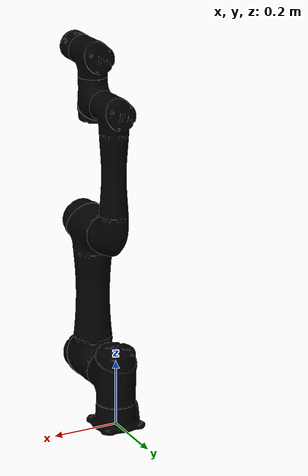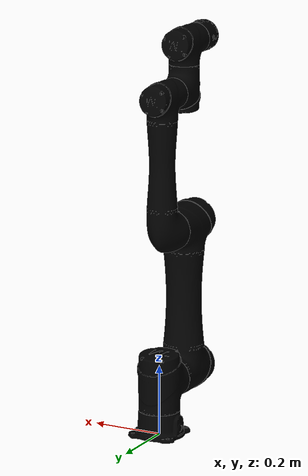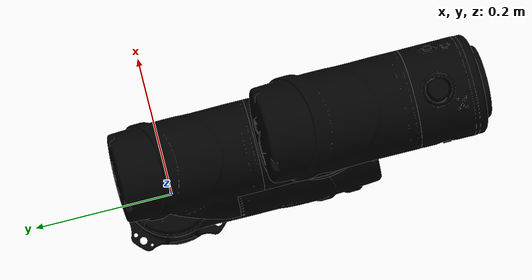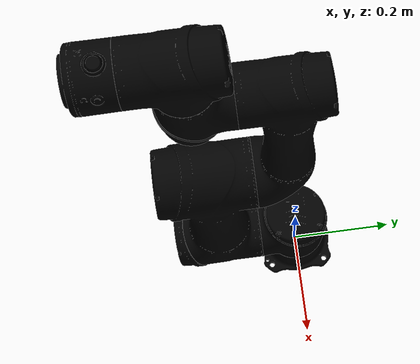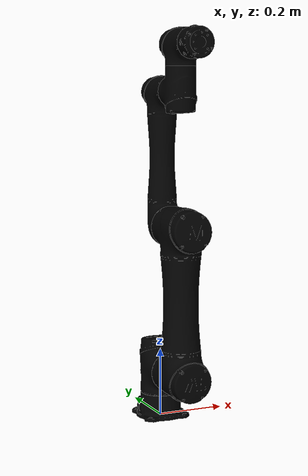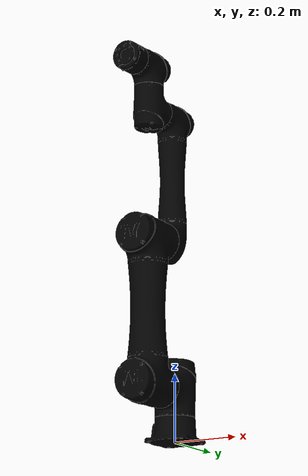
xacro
<?xml version="1.0"?>
<robot xmlns:xacro="http://www.ros.org/wiki/xacro" name="tm5sx">

  <xacro:arg name="ns" default="" />
  <xacro:arg name="prefix" default="" />
  <xacro:arg name="color" default="none" />
  <xacro:arg name="trans_hw_iface" default="hardware_interface/PositionJointInterface" />

  <xacro:include filename="$(find tm_gazebo)/xacro/tm.gazebo.xacro" />
  <xacro:include filename="$(find tm_description)/xacro/macro.transmission.xacro" />
  <xacro:include filename="$(find tm_description)/xacro/macro.materials.xacro" />

  <!-- tm5sx -->
  <!-- If the user want to use newly generated named robot description file as user_defined.urdf.xacro, -->
  <!-- you must modify 'macro.tm5sx-nominal.urdf.xacro' to 'user_defined.urdf.xacro'  -->
  <xacro:include filename="$(find tm_description)/xacro/macro.tm5sx-nominal.urdf.xacro" />

  <xacro:tmr_gazebo ns="$(arg ns)" prefix="$(arg prefix)" />
  <xacro:tmr_transmission prefix="$(arg prefix)" hw_iface="$(arg trans_hw_iface)" />
  <xacro:tmr_materials/>

  <!-- Arm -->
  <xacro:property name="color" value="$(arg color)"/>
  <xacro:if value="${color == 'none'}">
    <xacro:tm5sx ns="$(arg ns)" prefix="$(arg prefix)" />
  </xacro:if>

  <!-- Arm.color.stl -->
  <xacro:unless value="${color == 'none'}">
    <xacro:tm5sx ns="$(arg ns)" prefix="$(arg prefix)" color="${color}" format="obj" />
  </xacro:unless>

  <link name="world" />
  <joint name="world_joint" type="fixed">
    <parent link="world" />
    <child link="base" />
    <origin xyz="0 0 0" rpy="0 0 0" />
  </joint>

</robot>

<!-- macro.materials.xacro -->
<robot xmlns:xacro="http://www.ros.org/wiki/xacro">
    <xacro:macro name="tmr_materials">
        <material name="none">
            <color rgba="0.0 0.0 0.0 1.0" />
        </material>
        <material name="lightgrey">
            <color rgba="0.5 0.5 0.5 1.0" />
        </material>
        <material name="grey">
            <color rgba="0.75 0.75 0.75 1.0" />
        </material>
        <material name="white">
            <color rgba="0.95 0.95 0.95 1.0" />
        </material>
        <material name="red">
            <color rgba="0.95 0.0 0.0 1.0" />
        </material>
        <material name="orange">
            <color rgba="1.0 0.5 0.0 1.0" />
        </material>
        <material name="yellow">
            <color rgba="1.0 1.0 0.0 1.0" />
        </material>
        <material name="green">
            <color rgba="0.0 1.0 0.0 1.0" />
        </material>
        <material name="blue">
            <color rgba="0.0 0.0 1.0 1.0" />
        </material>
        <material name="indigo">
            <color rgba="0.3 0.3 0.6 1.0" />
        </material>
        <material name="violet">
            <color rgba="0.6 0.0 1.0 1.0" />
        </material>
        <material name="black">
            <color rgba="0.0 0.0 0.0 1.0" />
        </material>
        <material name="darkolive">
            <color rgba="0.3 0.3 0.25 1.0" />
        </material>
    </xacro:macro>
</robot>

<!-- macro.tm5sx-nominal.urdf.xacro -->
<robot xmlns:xacro="http://www.ros.org/wiki/xacro">

  <xacro:include filename="$(find tm_description)/xacro/macro.inertial.xacro" />

  <xacro:macro name="tm5sx" params="ns prefix color:=none format:=obj
    shoulder_1_joint_lower_limit:=${radians(-360)}    shoulder_1_joint_upper_limit:=${radians(360)}
    shoulder_2_joint_lower_limit:=${radians(-360)}    shoulder_2_joint_upper_limit:=${radians(360)}
    elbow_joint_lower_limit:=${radians(-158)}    elbow_joint_upper_limit:=${radians(158)}
    wrist_1_joint_lower_limit:=${radians(-360)}    wrist_1_joint_upper_limit:=${radians(360)}
    wrist_2_joint_lower_limit:=${radians(-360)}    wrist_2_joint_upper_limit:=${radians(360)}
    wrist_3_joint_lower_limit:=${radians(-360)}    wrist_3_joint_upper_limit:=${radians(360)}
    shoulder_1_joint_velocity_limit:=${radians(210)}
    shoulder_2_joint_velocity_limit:=${radians(210)}
    elbow_joint_velocity_limit:=${radians(210)}
    wrist_1_joint_velocity_limit:=${radians(225)}
    wrist_2_joint_velocity_limit:=${radians(225)}
    wrist_3_joint_velocity_limit:=${radians(450)}
    shoulder_1_joint_effort_limit:=${157}
    shoulder_2_joint_effort_limit:=${157}
    elbow_joint_effort_limit:=${157}
    wrist_1_joint_effort_limit:=${54}
    wrist_2_joint_effort_limit:=${54}
    wrist_3_joint_effort_limit:=${34}
    safety_limits:=false safety_pos_margin:=0.15
    safety_k_position:=20">

    <xacro:property name="damping_factor" value="0.000"/>
    <xacro:property name="d1" value="${damping_factor*0.1}"/>
    <xacro:property name="d2" value="${damping_factor*0.1}"/>
    <xacro:property name="d3" value="${damping_factor*0.1}"/>
    <xacro:property name="d4" value="${damping_factor*0.1}"/>
    <xacro:property name="d5" value="${damping_factor*0.1}"/>
    <xacro:property name="d6" value="${damping_factor*0.1}"/>

    <xacro:property name="friction_factor" value="0.000"/>
    <xacro:property name="f1" value="${friction_factor*0.1}"/>
    <xacro:property name="f2" value="${friction_factor*0.1}"/>
    <xacro:property name="f3" value="${friction_factor*0.1}"/>
    <xacro:property name="f4" value="${friction_factor*0.1}"/>
    <xacro:property name="f5" value="${friction_factor*0.1}"/>
    <xacro:property name="f6" value="${friction_factor*0.1}"/>

    <!-- Inertia parameters -->
    <xacro:property name="mass_0" value="1.0" />
    <xacro:property name="mass_1" value="4.320" />
    <xacro:property name="mass_2" value="9.796" />
    <xacro:property name="mass_3" value="2.778" />
    <xacro:property name="mass_4" value="1.770" />
    <xacro:property name="mass_5" value="1.770" />
    <xacro:property name="mass_6" value="0.340" />

    <xacro:property name="unit_factor" value="0.000001"/>
    <xacro:property name="ixx_1" value="${8439.2993*unit_factor}" />
    <xacro:property name="ixx_2" value="${29227.499*unit_factor}" />
    <xacro:property name="ixx_3" value="${4173.2753*unit_factor}" />
    <xacro:property name="ixx_4" value="${2046.0318*unit_factor}" />
    <xacro:property name="ixx_5" value="${2046.0318*unit_factor}" />
    <xacro:property name="ixx_6" value="${250.85804*unit_factor}" />

    <xacro:property name="iyy_1" value="${13793.964*unit_factor}" />
    <xacro:property name="iyy_2" value="${406910.57*unit_factor}" />
    <xacro:property name="iyy_3" value="${61909.685*unit_factor}" />
    <xacro:property name="iyy_4" value="${3171.8293*unit_factor}" />
    <xacro:property name="iyy_5" value="${3171.8293*unit_factor}" />
    <xacro:property name="iyy_6" value="${252.81701*unit_factor}" />

    <xacro:property name="izz_1" value="${14241.226*unit_factor}" />
    <xacro:property name="izz_2" value="${418507.58*unit_factor}" />
    <xacro:property name="izz_3" value="${63318.609*unit_factor}" />
    <xacro:property name="izz_4" value="${3478.9518*unit_factor}" />
    <xacro:property name="izz_5" value="${3478.9518*unit_factor}" />
    <xacro:property name="izz_6" value="${312.21304*unit_factor}" />

<!--LinkDescription-->
  <link name="${prefix}link_0">
    <visual>
      <geometry>
        <mesh filename="package://tm_description/meshes/tm5s/visual/tm5s-base.${format}" />
      </geometry>
      <material name="${color}" />
    </visual>
    <collision>
      <geometry>
        <mesh filename="package://tm_description/meshes/tm5s/collision/tm5s-base_c.stl" />
      </geometry>
    </collision>
<!--inertial-->
    <xacro:cylinder_inertial_z radius="0.06" length="0.05" mass="${mass_0}">
      <origin rpy="0.000000 0.000000 0.000000" xyz="0.000000 0.000000 0.000000" />
    </xacro:cylinder_inertial_z>
  </link>
  <joint name="${prefix}shoulder_1_joint" type="revolute">
    <parent link="${prefix}link_0" />
    <child link="${prefix}link_1" />
    <origin rpy="0.000000 -0.000000 0.000000" xyz="0.000000 0.000000 0.148400" />
    <axis xyz="0 0 1" />
<!--limit-->
    <limit lower="${shoulder_1_joint_lower_limit}" upper="${shoulder_1_joint_upper_limit}" velocity="${shoulder_1_joint_velocity_limit}" effort="${shoulder_1_joint_effort_limit}" />
    <xacro:if value="${safety_limits}">
      <safety_controller soft_lower_limit="${shoulder_1_joint_lower_limit + safety_pos_margin}" soft_upper_limit="${shoulder_1_joint_upper_limit - safety_pos_margin}" k_position="${safety_k_position}" k_velocity="0.0" />
    </xacro:if>
    <dynamics damping="${d1}" friction="${f1}" />
  </joint>
  <link name="${prefix}link_1">
    <visual>
      <geometry>
        <mesh filename="package://tm_description/meshes/tm5s/visual/tm5s-j1.${format}" />
      </geometry>
      <material name="${color}" />
    </visual>
    <collision>
      <geometry>
        <mesh filename="package://tm_description/meshes/tm5s/collision/tm5s-j1_c.stl" />
      </geometry>
    </collision>
    <inertial>
      <origin rpy="0.000000 0.000000 0.000000" xyz="0.000000 0.000000 0.000000" />
      <mass value="${mass_1}" />
      <inertia ixx="${ixx_1}" ixy="0.000000" ixz="0.000000" iyy="${iyy_1}" iyz="0.000000" izz="${izz_1}" />
    </inertial>
  </link>
  <joint name="${prefix}shoulder_2_joint" type="revolute">
    <parent link="${prefix}link_1" />
    <child link="${prefix}link_2" />
    <origin rpy="-1.570796 -1.570796 0.000000" xyz="0.000000 0.000000 0.000000" />
    <axis xyz="0 0 1" />
<!--limit-->
    <limit lower="${shoulder_2_joint_lower_limit}" upper="${shoulder_2_joint_upper_limit}" velocity="${shoulder_2_joint_velocity_limit}" effort="${shoulder_2_joint_effort_limit}" />
    <xacro:if value="${safety_limits}">
      <safety_controller soft_lower_limit="${shoulder_2_joint_lower_limit + safety_pos_margin}" soft_upper_limit="${shoulder_2_joint_upper_limit - safety_pos_margin}" k_position="${safety_k_position}" k_velocity="0.0" />
    </xacro:if>
    <dynamics damping="${d2}" friction="${f2}" />
  </joint>
  <link name="${prefix}link_2">
    <visual>
      <geometry>
        <mesh filename="package://tm_description/meshes/tm5s/visual/tm5s-a1.${format}" />
      </geometry>
      <material name="${color}" />
    </visual>
    <collision>
      <geometry>
        <mesh filename="package://tm_description/meshes/tm5s/collision/tm5s-a1_c.stl" />
      </geometry>
    </collision>
    <inertial>
      <origin rpy="0.000000 0.000000 0.000000" xyz="0.000000 0.000000 0.000000" />
      <mass value="${mass_2}" />
      <inertia ixx="${ixx_2}" ixy="0.000000" ixz="0.000000" iyy="${iyy_2}" iyz="0.000000" izz="${izz_2}" />
    </inertial>
  </link>
  <joint name="${prefix}elbow_joint" type="revolute">
    <parent link="${prefix}link_2" />
    <child link="${prefix}link_3" />
    <origin rpy="0.000000 -0.000000 0.000000" xyz="0.429000 0.000000 0.000000" />
    <axis xyz="0 0 1" />
<!--limit-->
    <limit lower="${elbow_joint_lower_limit}" upper="${elbow_joint_upper_limit}" velocity="${elbow_joint_velocity_limit}" effort="${elbow_joint_effort_limit}" />
    <xacro:if value="${safety_limits}">
      <safety_controller soft_lower_limit="${elbow_joint_lower_limit + safety_pos_margin}" soft_upper_limit="${elbow_joint_upper_limit - safety_pos_margin}" k_position="${safety_k_position}" k_velocity="0.0" />
    </xacro:if>
    <dynamics damping="${d3}" friction="${f3}" />
  </joint>
  <link name="${prefix}link_3">
    <visual>
      <geometry>
        <mesh filename="package://tm_description/meshes/tm5s/visual/tm5s-a2.${format}" />
      </geometry>
      <material name="${color}" />
    </visual>
    <collision>
      <geometry>
        <mesh filename="package://tm_description/meshes/tm5s/collision/tm5s-a2_c.stl" />
      </geometry>
    </collision>
    <inertial>
      <origin rpy="0.000000 0.000000 0.000000" xyz="0.000000 0.000000 0.000000" />
      <mass value="${mass_3}" />
      <inertia ixx="${ixx_3}" ixy="0.000000" ixz="0.000000" iyy="${iyy_3}" iyz="0.000000" izz="${izz_3}" />
    </inertial>
  </link>
  <joint name="${prefix}wrist_1_joint" type="revolute">
    <parent link="${prefix}link_3" />
    <child link="${prefix}link_4" />
    <origin rpy="0.000000 -0.000000 1.570796" xyz="0.386000 0.000000 -0.147800" />
    <axis xyz="0 0 1" />
<!--limit-->
    <limit lower="${wrist_1_joint_lower_limit}" upper="${wrist_1_joint_upper_limit}" velocity="${wrist_1_joint_velocity_limit}" effort="${wrist_1_joint_effort_limit}" />
    <xacro:if value="${safety_limits}">
      <safety_controller soft_lower_limit="${wrist_1_joint_lower_limit + safety_pos_margin}" soft_upper_limit="${wrist_1_joint_upper_limit - safety_pos_margin}" k_position="${safety_k_position}" k_velocity="0.0" />
    </xacro:if>
    <dynamics damping="${d4}" friction="${f4}" />
  </joint>
  <link name="${prefix}link_4">
    <visual>
      <geometry>
        <mesh filename="package://tm_description/meshes/tm5s/visual/tm5s-j5.${format}" />
      </geometry>
      <material name="${color}" />
    </visual>
    <collision>
      <geometry>
        <mesh filename="package://tm_description/meshes/tm5s/collision/tm5s-j5_c.stl" />
      </geometry>
    </collision>
    <inertial>
      <origin rpy="0.000000 0.000000 0.000000" xyz="0.000000 0.000000 0.000000" />
      <mass value="${mass_4}" />
      <inertia ixx="${ixx_4}" ixy="0.000000" ixz="0.000000" iyy="${iyy_4}" iyz="0.000000" izz="${izz_4}" />
    </inertial>
  </link>
  <joint name="${prefix}wrist_2_joint" type="revolute">
    <parent link="${prefix}link_4" />
    <child link="${prefix}link_5" />
    <origin rpy="1.570796 -0.000000 0.000000" xyz="0.000000 -0.131500 0.000000" />
    <axis xyz="0 0 1" />
<!--limit-->
    <limit lower="${wrist_2_joint_lower_limit}" upper="${wrist_2_joint_upper_limit}" velocity="${wrist_2_joint_velocity_limit}" effort="${wrist_2_joint_effort_limit}" />
    <xacro:if value="${safety_limits}">
      <safety_controller soft_lower_limit="${wrist_2_joint_lower_limit + safety_pos_margin}" soft_upper_limit="${wrist_2_joint_upper_limit - safety_pos_margin}" k_position="${safety_k_position}" k_velocity="0.0" />
    </xacro:if>
    <dynamics damping="${d5}" friction="${f5}" />
  </joint>
  <link name="${prefix}link_5">
    <visual>
      <geometry>
        <mesh filename="package://tm_description/meshes/tm5s/visual/tm5s-j6.${format}" />
      </geometry>
      <material name="${color}" />
    </visual>
    <collision>
      <geometry>
        <mesh filename="package://tm_description/meshes/tm5s/collision/tm5s-j6_c.stl" />
      </geometry>
    </collision>
    <inertial>
      <origin rpy="0.000000 0.000000 0.000000" xyz="0.000000 0.000000 0.000000" />
      <mass value="${mass_5}" />
      <inertia ixx="${ixx_5}" ixy="0.000000" ixz="0.000000" iyy="${iyy_5}" iyz="0.000000" izz="${izz_5}" />
    </inertial>
  </link>
  <joint name="${prefix}wrist_3_joint" type="revolute">
    <parent link="${prefix}link_5" />
    <child link="${prefix}link_6" />
    <origin rpy="1.570796 -0.000000 0.000000" xyz="0.000000 -0.134950 0.000000" />
    <axis xyz="0 0 1" />
<!--limit-->
    <limit lower="${wrist_3_joint_lower_limit}" upper="${wrist_3_joint_upper_limit}" velocity="${wrist_3_joint_velocity_limit}" effort="${wrist_3_joint_effort_limit}" />
    <xacro:if value="${safety_limits}">
      <safety_controller soft_lower_limit="${wrist_3_joint_lower_limit + safety_pos_margin}" soft_upper_limit="${wrist_3_joint_upper_limit - safety_pos_margin}" k_position="${safety_k_position}" k_velocity="0.0" />
    </xacro:if>
    <dynamics damping="${d6}" friction="${f6}" />
  </joint>
  <link name="${prefix}link_6">
    <visual>
      <geometry>
        <mesh filename="package://tm_description/meshes/tm5s/visual/tm5s-iox.${format}" />
      </geometry>
      <material name="${color}" />
    </visual>
    <collision>
      <geometry>
        <mesh filename="package://tm_description/meshes/tm5s/collision/tm5s-iox_c.stl" />
      </geometry>
    </collision>
    <inertial>
      <origin rpy="0.000000 0.000000 0.000000" xyz="0.000000 0.000000 0.000000" />
      <mass value="${mass_6}" />
      <inertia ixx="${ixx_6}" ixy="0.000000" ixz="0.000000" iyy="${iyy_6}" iyz="0.000000" izz="${izz_6}" />
    </inertial>
  </link>
  <joint name="${prefix}flange_fixed_joint" type="fixed">
    <parent link="${prefix}link_6" />
    <child link="${prefix}flange_link" />
    <origin rpy="0.000000 0.000000 0.000000" xyz="0.000000 0.000000 0.000000" />
  </joint>

  <link name="${prefix}flange_link" />

  <link name="${prefix}base" />
  <joint name="${prefix}base_fixed_joint" type="fixed">
    <parent link="${prefix}base" />
    <child link="${prefix}link_0" />
    <origin rpy="0.000000 0.000000 0.000000" xyz="0.000000 0.000000 0.000000" />
  </joint>
  <link name="${prefix}tool0" />
  <joint name="${prefix}flange_link-tool0" type="fixed">
    <parent link="${prefix}flange_link" />
    <child link="${prefix}tool0" />
    <origin rpy="0.000000 0.000000 0.000000" xyz="0.000000 0.000000 0.000000" />
  </joint>
<!--LinkDescription-->

  </xacro:macro>

</robot>
